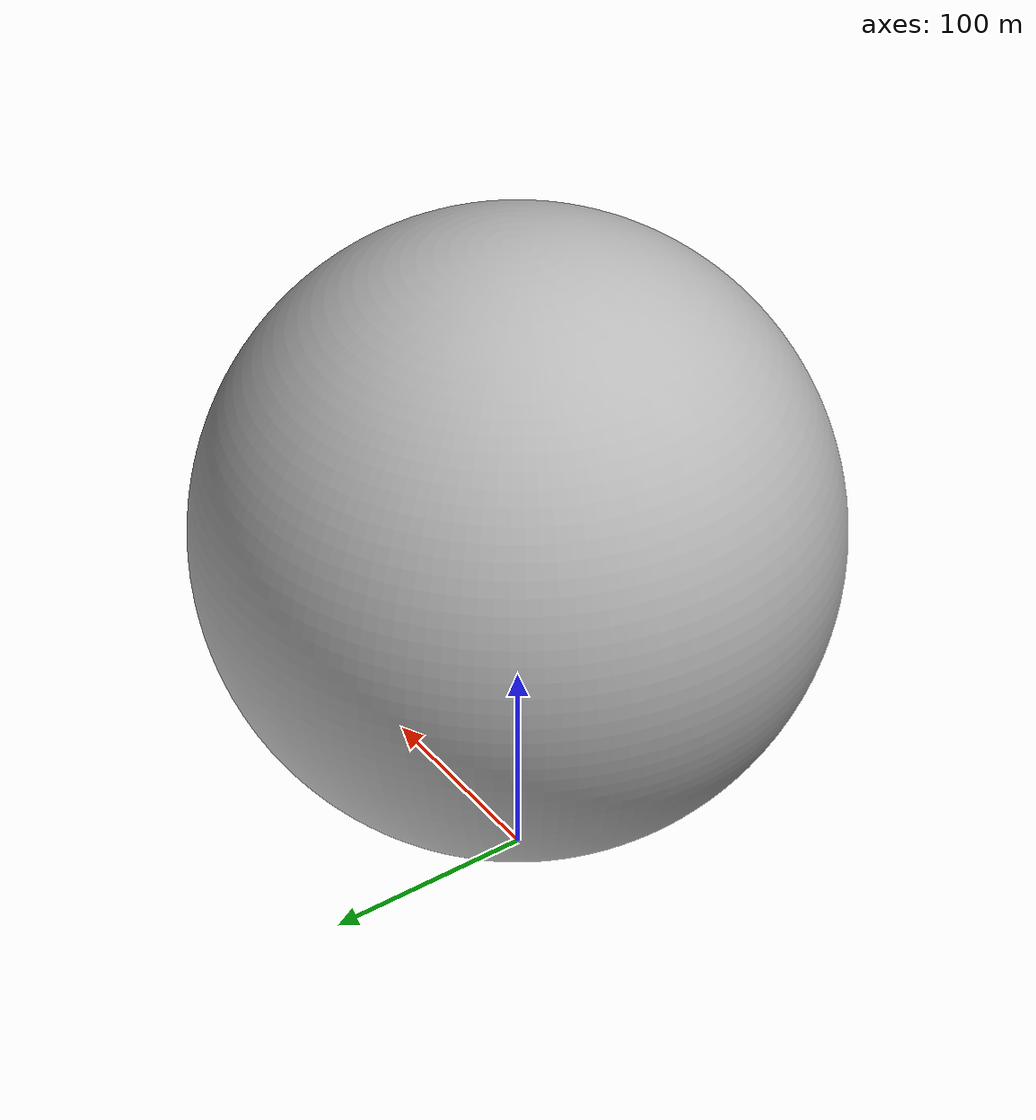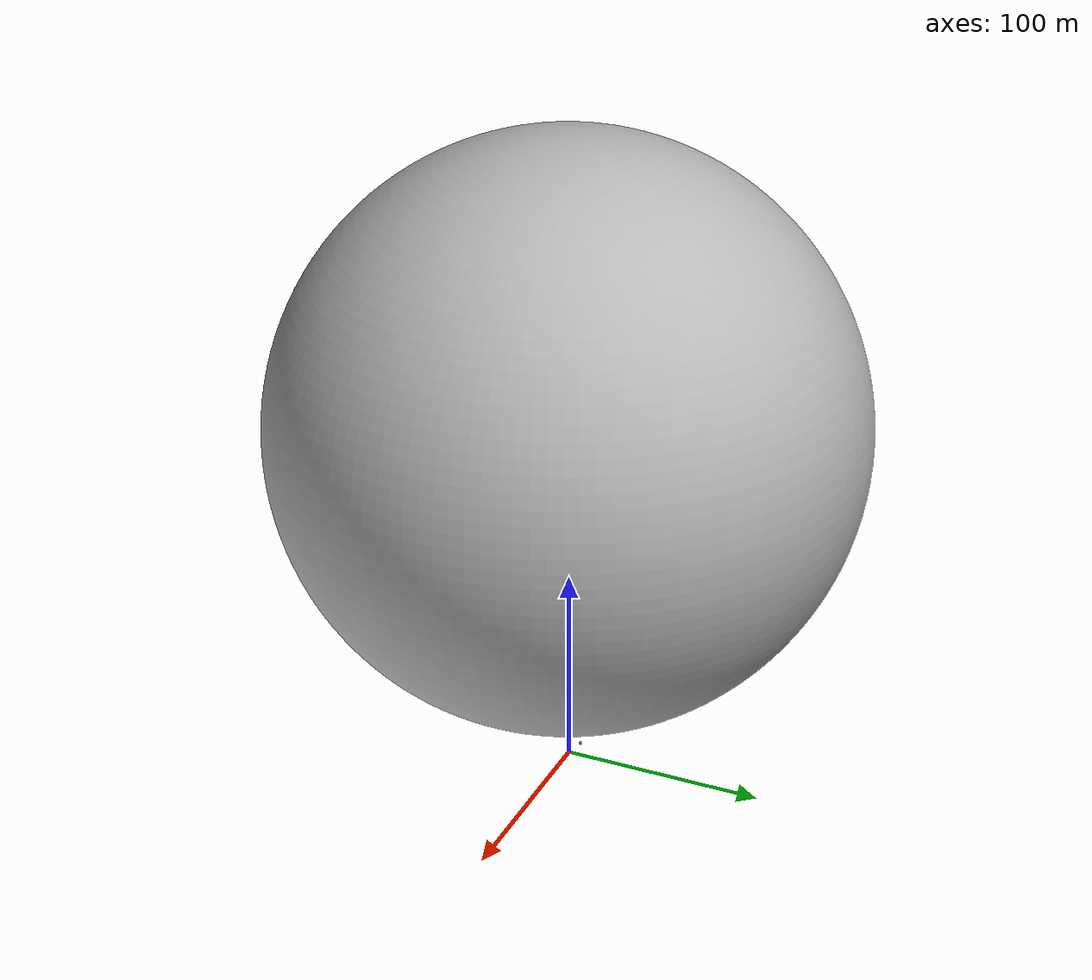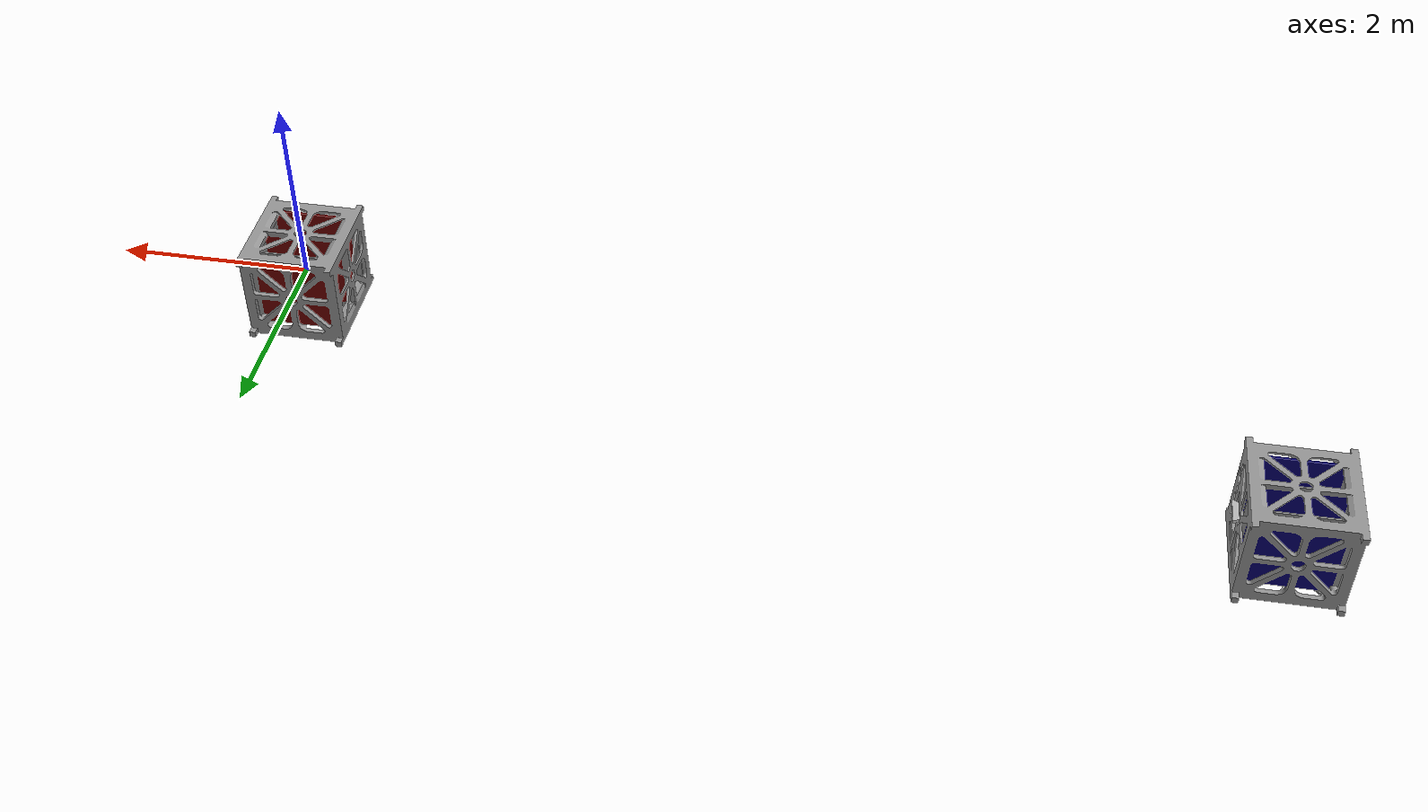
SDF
<?xml version="1.0" ?>
<sdf version="1.5">
  <world name="default">

    <scene>
      <ambient>0.4 0.4 0.4 1</ambient>
      <background>0 0 0 1</background>
      <shadows>0</shadows>
      <grid>false</grid>
    </scene>
    <include>
      <uri>model://sun1</uri>
    </include>

    <plugin name="earth_orbit" filename="libearth_orbit.so"/>

    <include>
      <uri>model://earth</uri>
      <name>earth</name>
      <pose>0 0 180 0 0 0</pose>
    </include>

    <include>
      <uri>model://cubesat</uri>
      <name>cubesat</name>
      <pose>0 0 0 0 0 0</pose>
    </include>
    <include>
      <uri>model://cubesat1</uri>
      <name>cubesat1</name>
      <pose>-10 2 0 0 0 0</pose>
    </include>

    <physics name='default_physics' default='0' type='ode'>
      <gravity>0 0 0</gravity>
      <ode>
        <solver>
          <type>quick</type>
          <iters>10</iters>
          <sor>1.3</sor>
          <use_dynamic_moi_rescaling>0</use_dynamic_moi_rescaling>
        </solver>
        <constraints>
          <cfm>0</cfm>
          <erp>0.2</erp>
          <contact_max_correcting_vel>100</contact_max_correcting_vel>
          <contact_surface_layer>0.001</contact_surface_layer>
        </constraints>
      </ode>
      <max_step_size>0.004</max_step_size>
      <real_time_factor>1</real_time_factor>
      <real_time_update_rate>250</real_time_update_rate>
      <magnetic_field>6.0e-6 2.3e-5 -4.2e-5</magnetic_field>
    </physics>

    <gui>
      <camera name="user_camera">
        <pose>5 -15 -25 0 -0.8 2</pose>
      </camera>
    </gui>

  </world>
</sdf>

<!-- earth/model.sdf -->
<sdf version="1.5">
  <model name="earth">
    <link name="link">

      <visual name="visual">
        <geometry>
          <mesh>
            <uri>model://earth/meshes/earth.dae</uri>
            <scale>450 450 450</scale>
          </mesh>
        </geometry>
       </visual>

    </link>
  </model>
</sdf>

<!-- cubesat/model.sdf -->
<sdf version="1.5">
  <model name="cubesat">

    <link name="link">
      <visual name="visual">
        <geometry>
          <mesh>
            <uri>model://cubesat/meshes/cubesat.dae</uri>
          </mesh>
        </geometry>
       </visual>
    </link>

  </model>
</sdf>

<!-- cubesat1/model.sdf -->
<sdf version="1.5">
  <model name="cubesat1">

    <link name="link">
      <visual name="visual">
        <geometry>
          <mesh>
            <uri>model://cubesat1/meshes/cubesat1.dae</uri>
          </mesh>
        </geometry>
       </visual>
    </link>

    <include>
      <uri>model://kinect_ros</uri>
      <name>kinect</name>
      <pose>0.57 0 0.08 0 0 0</pose>
    </include>

  <joint name="kinect_joint" type="fixed">
    <parent>link</parent>
    <child>kinect::link</child>
  </joint>

  </model>

</sdf>

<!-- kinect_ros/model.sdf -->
<sdf version="1.5">
  <model name="kinect_ros">
    <pose>0 0 0.036 0 0 0</pose>
    <link name="link">
      <inertial>
        <mass>0.1</mass>
      </inertial>
      <collision name="collision">
        <geometry>
          <box>
            <size>0.073000 0.276000 0.072000</size>
          </box>
        </geometry>
      </collision>
      <visual name="visual">
        <geometry>
          <mesh>
            <uri>model://kinect/meshes/kinect.dae</uri>
          </mesh>
        </geometry>
      </visual>
      <sensor name="camera" type="depth">
        <update_rate>20</update_rate>
        <camera>
          <horizontal_fov>1.047198</horizontal_fov>
          <image>
            <width>640</width>
            <height>480</height>
            <format>R8G8B8</format>
          </image>
          <clip>
            <near>0.05</near>
            <far>20</far>
          </clip>
        </camera>
        <plugin name="camera_plugin" filename="libgazebo_ros_openni_kinect.so">
          <baseline>0.2</baseline>
          <alwaysOn>true</alwaysOn>
          <updateRate>0.0</updateRate>
          <cameraName>camera_ir</cameraName>
          <imageTopicName>/camera/color/image_raw</imageTopicName>
          <cameraInfoTopicName>/camera/color/camera_info</cameraInfoTopicName>
          <depthImageTopicName>/camera/depth/image_raw</depthImageTopicName>
          <depthImageCameraInfoTopicName>/camera/depth/camera_info</depthImageCameraInfoTopicName>
          <pointCloudTopicName>/camera/depth/points</pointCloudTopicName>
          <frameName>camera_link</frameName>
          <pointCloudCutoff>0.5</pointCloudCutoff>
          <pointCloudCutoffMax>20.0</pointCloudCutoffMax>
          <distortionK1>0</distortionK1>
          <distortionK2>0</distortionK2>
          <distortionK3>0</distortionK3>
          <distortionT1>0</distortionT1>
          <distortionT2>0</distortionT2>
          <CxPrime>0</CxPrime>
          <Cx>0</Cx>
          <Cy>0</Cy>
          <focalLength>0</focalLength>
          <hackBaseline>0</hackBaseline>
        </plugin>
      </sensor>
    </link>
  </model>
</sdf>
